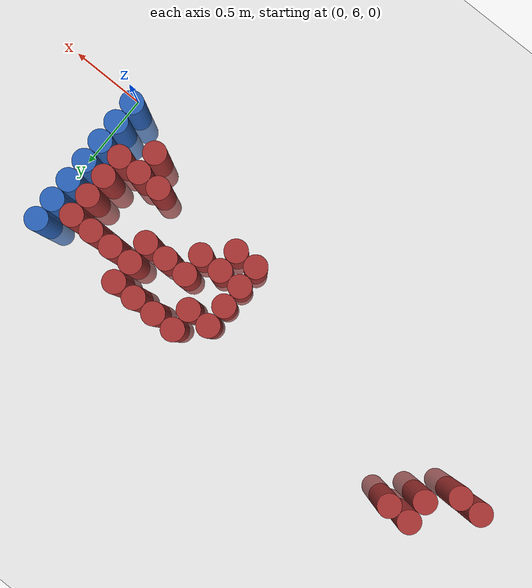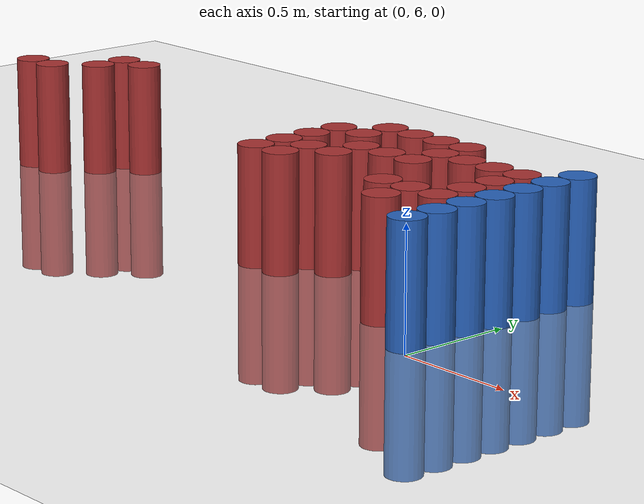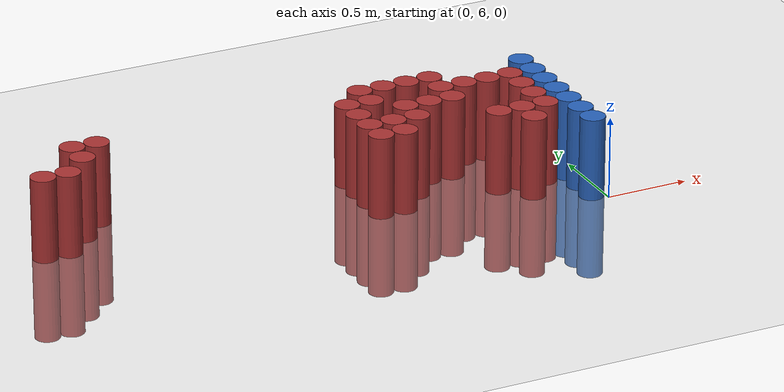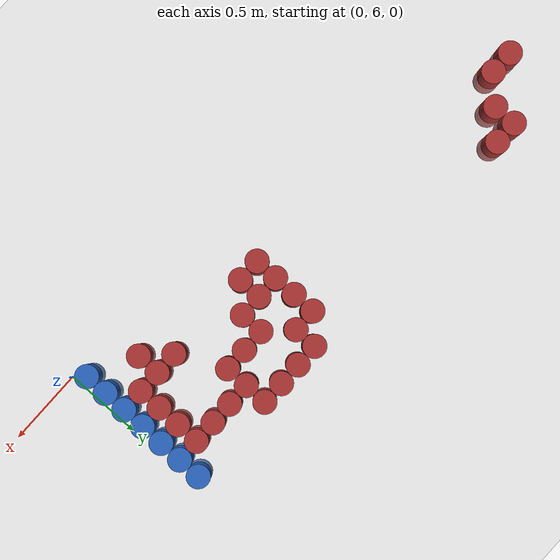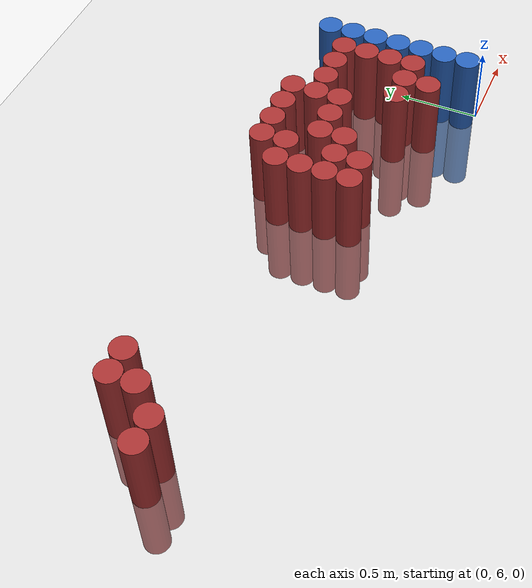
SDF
<sdf version="1.6">
 <world name="default">
  <model name="ground_plane">
   <static>1</static>
   <link name="link">
    <collision name="collision">
     <geometry><plane><normal>0 0 1</normal><size>100 100</size></plane></geometry>
     <surface><friction><ode><mu>100</mu><mu2>50</mu2></ode></friction></surface>
    </collision>
    <visual name="visual">
     <cast_shadows>0</cast_shadows>
     <geometry><plane><normal>0 0 1</normal><size>100 100</size></plane></geometry>
     <material>
      <script><uri>file://media/materials/scripts/gazebo.material</uri><name>Gazebo/Grey</name></script>
     </material>
    </visual>
   </link>
  </model>
  <model name="unit_cylinder_191">
   <static>1</static>
   <pose>-3.225000 6.675000 0.000000 0.000000 0.000000 0.000000</pose>
   <link name="link">
    <inertial>
     <mass>1</mass>
     <inertia><ixx>0.145833</ixx><ixy>0</ixy><ixz>0</ixz><iyy>0.145833</iyy><iyz>0</iyz><izz>0.125</izz></inertia>
    </inertial>
    <collision name="collision">
     <geometry><cylinder><radius>0.075000</radius><length>1</length></cylinder></geometry>
    </collision>
    <visual name="visual">
     <geometry><cylinder><radius>0.075000</radius><length>1</length></cylinder></geometry>
     <material>
      <ambient>0.648000 0.192000 0.192000 1</ambient>
      <diffuse>0.648000 0.192000 0.192000 1</diffuse>
     </material>
     <material>
      <script><name>Gazebo/Grey</name><uri>file://media/materials/scripts/gazebo.material</uri></script>
     </material>
    </visual>
    <sensor name="sensor_contact" type="contact"><contact><collision>collision</collision></contact></sensor>
   </link>
   <plugin filename="gz-sim-touchplugin-system" name="gz::sim::systems::TouchPlugin">
    <target>robot</target>
    <namespace>robot</namespace>
    <time>0.001</time>
    <enabled>true</enabled>
   </plugin>
  </model>
  <model name="unit_cylinder_200">
   <static>1</static>
   <pose>-3.075000 6.675000 0.000000 0.000000 0.000000 0.000000</pose>
   <link name="link">
    <inertial>
     <mass>1</mass>
     <inertia><ixx>0.145833</ixx><ixy>0</ixy><ixz>0</ixz><iyy>0.145833</iyy><iyz>0</iyz><izz>0.125</izz></inertia>
    </inertial>
    <collision name="collision">
     <geometry><cylinder><radius>0.075000</radius><length>1</length></cylinder></geometry>
    </collision>
    <visual name="visual">
     <geometry><cylinder><radius>0.075000</radius><length>1</length></cylinder></geometry>
     <material>
      <ambient>0.648000 0.192000 0.192000 1</ambient>
      <diffuse>0.648000 0.192000 0.192000 1</diffuse>
     </material>
     <material>
      <script><name>Gazebo/Grey</name><uri>file://media/materials/scripts/gazebo.material</uri></script>
     </material>
    </visual>
    <sensor name="sensor_contact" type="contact"><contact><collision>collision</collision></contact></sensor>
   </link>
   <plugin filename="gz-sim-touchplugin-system" name="gz::sim::systems::TouchPlugin">
    <target>robot</target>
    <namespace>robot</namespace>
    <time>0.001</time>
    <enabled>true</enabled>
   </plugin>
  </model>
  <model name="unit_cylinder_203">
   <static>1</static>
   <pose>-2.925000 6.825000 0.000000 0.000000 0.000000 0.000000</pose>
   <link name="link">
    <inertial>
     <mass>1</mass>
     <inertia><ixx>0.145833</ixx><ixy>0</ixy><ixz>0</ixz><iyy>0.145833</iyy><iyz>0</iyz><izz>0.125</izz></inertia>
    </inertial>
    <collision name="collision">
     <geometry><cylinder><radius>0.075000</radius><length>1</length></cylinder></geometry>
    </collision>
    <visual name="visual">
     <geometry><cylinder><radius>0.075000</radius><length>1</length></cylinder></geometry>
     <material>
      <ambient>0.648000 0.192000 0.192000 1</ambient>
      <diffuse>0.648000 0.192000 0.192000 1</diffuse>
     </material>
     <material>
      <script><name>Gazebo/Grey</name><uri>file://media/materials/scripts/gazebo.material</uri></script>
     </material>
    </visual>
    <sensor name="sensor_contact" type="contact"><contact><collision>collision</collision></contact></sensor>
   </link>
   <plugin filename="gz-sim-touchplugin-system" name="gz::sim::systems::TouchPlugin">
    <target>robot</target>
    <namespace>robot</namespace>
    <time>0.001</time>
    <enabled>true</enabled>
   </plugin>
  </model>
  <model name="unit_cylinder_204">
   <static>1</static>
   <pose>-2.925000 6.975000 0.000000 0.000000 0.000000 0.000000</pose>
   <link name="link">
    <inertial>
     <mass>1</mass>
     <inertia><ixx>0.145833</ixx><ixy>0</ixy><ixz>0</ixz><iyy>0.145833</iyy><iyz>0</iyz><izz>0.125</izz></inertia>
    </inertial>
    <collision name="collision">
     <geometry><cylinder><radius>0.075000</radius><length>1</length></cylinder></geometry>
    </collision>
    <visual name="visual">
     <geometry><cylinder><radius>0.075000</radius><length>1</length></cylinder></geometry>
     <material>
      <ambient>0.648000 0.192000 0.192000 1</ambient>
      <diffuse>0.648000 0.192000 0.192000 1</diffuse>
     </material>
     <material>
      <script><name>Gazebo/Grey</name><uri>file://media/materials/scripts/gazebo.material</uri></script>
     </material>
    </visual>
    <sensor name="sensor_contact" type="contact"><contact><collision>collision</collision></contact></sensor>
   </link>
   <plugin filename="gz-sim-touchplugin-system" name="gz::sim::systems::TouchPlugin">
    <target>robot</target>
    <namespace>robot</namespace>
    <time>0.001</time>
    <enabled>true</enabled>
   </plugin>
  </model>
  <model name="unit_cylinder_207">
   <static>1</static>
   <pose>-2.775000 6.975000 0.000000 0.000000 0.000000 0.000000</pose>
   <link name="link">
    <inertial>
     <mass>1</mass>
     <inertia><ixx>0.145833</ixx><ixy>0</ixy><ixz>0</ixz><iyy>0.145833</iyy><iyz>0</iyz><izz>0.125</izz></inertia>
    </inertial>
    <collision name="collision">
     <geometry><cylinder><radius>0.075000</radius><length>1</length></cylinder></geometry>
    </collision>
    <visual name="visual">
     <geometry><cylinder><radius>0.075000</radius><length>1</length></cylinder></geometry>
     <material>
      <ambient>0.648000 0.192000 0.192000 1</ambient>
      <diffuse>0.648000 0.192000 0.192000 1</diffuse>
     </material>
     <material>
      <script><name>Gazebo/Grey</name><uri>file://media/materials/scripts/gazebo.material</uri></script>
     </material>
    </visual>
    <sensor name="sensor_contact" type="contact"><contact><collision>collision</collision></contact></sensor>
   </link>
   <plugin filename="gz-sim-touchplugin-system" name="gz::sim::systems::TouchPlugin">
    <target>robot</target>
    <namespace>robot</namespace>
    <time>0.001</time>
    <enabled>true</enabled>
   </plugin>
  </model>
  <model name="unit_cylinder_231">
   <static>1</static>
   <pose>-1.275000 6.375000 0.000000 0.000000 0.000000 0.000000</pose>
   <link name="link">
    <inertial>
     <mass>1</mass>
     <inertia><ixx>0.145833</ixx><ixy>0</ixy><ixz>0</ixz><iyy>0.145833</iyy><iyz>0</iyz><izz>0.125</izz></inertia>
    </inertial>
    <collision name="collision">
     <geometry><cylinder><radius>0.075000</radius><length>1</length></cylinder></geometry>
    </collision>
    <visual name="visual">
     <geometry><cylinder><radius>0.075000</radius><length>1</length></cylinder></geometry>
     <material>
      <ambient>0.648000 0.192000 0.192000 1</ambient>
      <diffuse>0.648000 0.192000 0.192000 1</diffuse>
     </material>
     <material>
      <script><name>Gazebo/Grey</name><uri>file://media/materials/scripts/gazebo.material</uri></script>
     </material>
    </visual>
    <sensor name="sensor_contact" type="contact"><contact><collision>collision</collision></contact></sensor>
   </link>
   <plugin filename="gz-sim-touchplugin-system" name="gz::sim::systems::TouchPlugin">
    <target>robot</target>
    <namespace>robot</namespace>
    <time>0.001</time>
    <enabled>true</enabled>
   </plugin>
  </model>
  <model name="unit_cylinder_232">
   <static>1</static>
   <pose>-1.275000 6.525000 0.000000 0.000000 0.000000 0.000000</pose>
   <link name="link">
    <inertial>
     <mass>1</mass>
     <inertia><ixx>0.145833</ixx><ixy>0</ixy><ixz>0</ixz><iyy>0.145833</iyy><iyz>0</iyz><izz>0.125</izz></inertia>
    </inertial>
    <collision name="collision">
     <geometry><cylinder><radius>0.075000</radius><length>1</length></cylinder></geometry>
    </collision>
    <visual name="visual">
     <geometry><cylinder><radius>0.075000</radius><length>1</length></cylinder></geometry>
     <material>
      <ambient>0.648000 0.192000 0.192000 1</ambient>
      <diffuse>0.648000 0.192000 0.192000 1</diffuse>
     </material>
     <material>
      <script><name>Gazebo/Grey</name><uri>file://media/materials/scripts/gazebo.material</uri></script>
     </material>
    </visual>
    <sensor name="sensor_contact" type="contact"><contact><collision>collision</collision></contact></sensor>
   </link>
   <plugin filename="gz-sim-touchplugin-system" name="gz::sim::systems::TouchPlugin">
    <target>robot</target>
    <namespace>robot</namespace>
    <time>0.001</time>
    <enabled>true</enabled>
   </plugin>
  </model>
  <model name="unit_cylinder_233">
   <static>1</static>
   <pose>-1.275000 6.675000 0.000000 0.000000 0.000000 0.000000</pose>
   <link name="link">
    <inertial>
     <mass>1</mass>
     <inertia><ixx>0.145833</ixx><ixy>0</ixy><ixz>0</ixz><iyy>0.145833</iyy><iyz>0</iyz><izz>0.125</izz></inertia>
    </inertial>
    <collision name="collision">
     <geometry><cylinder><radius>0.075000</radius><length>1</length></cylinder></geometry>
    </collision>
    <visual name="visual">
     <geometry><cylinder><radius>0.075000</radius><length>1</length></cylinder></geometry>
     <material>
      <ambient>0.648000 0.192000 0.192000 1</ambient>
      <diffuse>0.648000 0.192000 0.192000 1</diffuse>
     </material>
     <material>
      <script><name>Gazebo/Grey</name><uri>file://media/materials/scripts/gazebo.material</uri></script>
     </material>
    </visual>
    <sensor name="sensor_contact" type="contact"><contact><collision>collision</collision></contact></sensor>
   </link>
   <plugin filename="gz-sim-touchplugin-system" name="gz::sim::systems::TouchPlugin">
    <target>robot</target>
    <namespace>robot</namespace>
    <time>0.001</time>
    <enabled>true</enabled>
   </plugin>
  </model>
  <model name="unit_cylinder_234">
   <static>1</static>
   <pose>-1.275000 6.825000 0.000000 0.000000 0.000000 0.000000</pose>
   <link name="link">
    <inertial>
     <mass>1</mass>
     <inertia><ixx>0.145833</ixx><ixy>0</ixy><ixz>0</ixz><iyy>0.145833</iyy><iyz>0</iyz><izz>0.125</izz></inertia>
    </inertial>
    <collision name="collision">
     <geometry><cylinder><radius>0.075000</radius><length>1</length></cylinder></geometry>
    </collision>
    <visual name="visual">
     <geometry><cylinder><radius>0.075000</radius><length>1</length></cylinder></geometry>
     <material>
      <ambient>0.648000 0.192000 0.192000 1</ambient>
      <diffuse>0.648000 0.192000 0.192000 1</diffuse>
     </material>
     <material>
      <script><name>Gazebo/Grey</name><uri>file://media/materials/scripts/gazebo.material</uri></script>
     </material>
    </visual>
    <sensor name="sensor_contact" type="contact"><contact><collision>collision</collision></contact></sensor>
   </link>
   <plugin filename="gz-sim-touchplugin-system" name="gz::sim::systems::TouchPlugin">
    <target>robot</target>
    <namespace>robot</namespace>
    <time>0.001</time>
    <enabled>true</enabled>
   </plugin>
  </model>
  <model name="unit_cylinder_237">
   <static>1</static>
   <pose>-1.125000 6.375000 0.000000 0.000000 0.000000 0.000000</pose>
   <link name="link">
    <inertial>
     <mass>1</mass>
     <inertia><ixx>0.145833</ixx><ixy>0</ixy><ixz>0</ixz><iyy>0.145833</iyy><iyz>0</iyz><izz>0.125</izz></inertia>
    </inertial>
    <collision name="collision">
     <geometry><cylinder><radius>0.075000</radius><length>1</length></cylinder></geometry>
    </collision>
    <visual name="visual">
     <geometry><cylinder><radius>0.075000</radius><length>1</length></cylinder></geometry>
     <material>
      <ambient>0.648000 0.192000 0.192000 1</ambient>
      <diffuse>0.648000 0.192000 0.192000 1</diffuse>
     </material>
     <material>
      <script><name>Gazebo/Grey</name><uri>file://media/materials/scripts/gazebo.material</uri></script>
     </material>
    </visual>
    <sensor name="sensor_contact" type="contact"><contact><collision>collision</collision></contact></sensor>
   </link>
   <plugin filename="gz-sim-touchplugin-system" name="gz::sim::systems::TouchPlugin">
    <target>robot</target>
    <namespace>robot</namespace>
    <time>0.001</time>
    <enabled>true</enabled>
   </plugin>
  </model>
  <model name="unit_cylinder_238">
   <static>1</static>
   <pose>-1.125000 6.525000 0.000000 0.000000 0.000000 0.000000</pose>
   <link name="link">
    <inertial>
     <mass>1</mass>
     <inertia><ixx>0.145833</ixx><ixy>0</ixy><ixz>0</ixz><iyy>0.145833</iyy><iyz>0</iyz><izz>0.125</izz></inertia>
    </inertial>
    <collision name="collision">
     <geometry><cylinder><radius>0.075000</radius><length>1</length></cylinder></geometry>
    </collision>
    <visual name="visual">
     <geometry><cylinder><radius>0.075000</radius><length>1</length></cylinder></geometry>
     <material>
      <ambient>0.648000 0.192000 0.192000 1</ambient>
      <diffuse>0.648000 0.192000 0.192000 1</diffuse>
     </material>
     <material>
      <script><name>Gazebo/Grey</name><uri>file://media/materials/scripts/gazebo.material</uri></script>
     </material>
    </visual>
    <sensor name="sensor_contact" type="contact"><contact><collision>collision</collision></contact></sensor>
   </link>
   <plugin filename="gz-sim-touchplugin-system" name="gz::sim::systems::TouchPlugin">
    <target>robot</target>
    <namespace>robot</namespace>
    <time>0.001</time>
    <enabled>true</enabled>
   </plugin>
  </model>
  <model name="unit_cylinder_239">
   <static>1</static>
   <pose>-1.125000 6.825000 0.000000 0.000000 0.000000 0.000000</pose>
   <link name="link">
    <inertial>
     <mass>1</mass>
     <inertia><ixx>0.145833</ixx><ixy>0</ixy><ixz>0</ixz><iyy>0.145833</iyy><iyz>0</iyz><izz>0.125</izz></inertia>
    </inertial>
    <collision name="collision">
     <geometry><cylinder><radius>0.075000</radius><length>1</length></cylinder></geometry>
    </collision>
    <visual name="visual">
     <geometry><cylinder><radius>0.075000</radius><length>1</length></cylinder></geometry>
     <material>
      <ambient>0.648000 0.192000 0.192000 1</ambient>
      <diffuse>0.648000 0.192000 0.192000 1</diffuse>
     </material>
     <material>
      <script><name>Gazebo/Grey</name><uri>file://media/materials/scripts/gazebo.material</uri></script>
     </material>
    </visual>
    <sensor name="sensor_contact" type="contact"><contact><collision>collision</collision></contact></sensor>
   </link>
   <plugin filename="gz-sim-touchplugin-system" name="gz::sim::systems::TouchPlugin">
    <target>robot</target>
    <namespace>robot</namespace>
    <time>0.001</time>
    <enabled>true</enabled>
   </plugin>
  </model>
  <model name="unit_cylinder_240">
   <static>1</static>
   <pose>-1.125000 6.975000 0.000000 0.000000 0.000000 0.000000</pose>
   <link name="link">
    <inertial>
     <mass>1</mass>
     <inertia><ixx>0.145833</ixx><ixy>0</ixy><ixz>0</ixz><iyy>0.145833</iyy><iyz>0</iyz><izz>0.125</izz></inertia>
    </inertial>
    <collision name="collision">
     <geometry><cylinder><radius>0.075000</radius><length>1</length></cylinder></geometry>
    </collision>
    <visual name="visual">
     <geometry><cylinder><radius>0.075000</radius><length>1</length></cylinder></geometry>
     <material>
      <ambient>0.648000 0.192000 0.192000 1</ambient>
      <diffuse>0.648000 0.192000 0.192000 1</diffuse>
     </material>
     <material>
      <script><name>Gazebo/Grey</name><uri>file://media/materials/scripts/gazebo.material</uri></script>
     </material>
    </visual>
    <sensor name="sensor_contact" type="contact"><contact><collision>collision</collision></contact></sensor>
   </link>
   <plugin filename="gz-sim-touchplugin-system" name="gz::sim::systems::TouchPlugin">
    <target>robot</target>
    <namespace>robot</namespace>
    <time>0.001</time>
    <enabled>true</enabled>
   </plugin>
  </model>
  <model name="unit_cylinder_245">
   <static>1</static>
   <pose>-0.975000 6.525000 0.000000 0.000000 0.000000 0.000000</pose>
   <link name="link">
    <inertial>
     <mass>1</mass>
     <inertia><ixx>0.145833</ixx><ixy>0</ixy><ixz>0</ixz><iyy>0.145833</iyy><iyz>0</iyz><izz>0.125</izz></inertia>
    </inertial>
    <collision name="collision">
     <geometry><cylinder><radius>0.075000</radius><length>1</length></cylinder></geometry>
    </collision>
    <visual name="visual">
     <geometry><cylinder><radius>0.075000</radius><length>1</length></cylinder></geometry>
     <material>
      <ambient>0.648000 0.192000 0.192000 1</ambient>
      <diffuse>0.648000 0.192000 0.192000 1</diffuse>
     </material>
     <material>
      <script><name>Gazebo/Grey</name><uri>file://media/materials/scripts/gazebo.material</uri></script>
     </material>
    </visual>
    <sensor name="sensor_contact" type="contact"><contact><collision>collision</collision></contact></sensor>
   </link>
   <plugin filename="gz-sim-touchplugin-system" name="gz::sim::systems::TouchPlugin">
    <target>robot</target>
    <namespace>robot</namespace>
    <time>0.001</time>
    <enabled>true</enabled>
   </plugin>
  </model>
  <model name="unit_cylinder_246">
   <static>1</static>
   <pose>-0.975000 6.675000 0.000000 0.000000 0.000000 0.000000</pose>
   <link name="link">
    <inertial>
     <mass>1</mass>
     <inertia><ixx>0.145833</ixx><ixy>0</ixy><ixz>0</ixz><iyy>0.145833</iyy><iyz>0</iyz><izz>0.125</izz></inertia>
    </inertial>
    <collision name="collision">
     <geometry><cylinder><radius>0.075000</radius><length>1</length></cylinder></geometry>
    </collision>
    <visual name="visual">
     <geometry><cylinder><radius>0.075000</radius><length>1</length></cylinder></geometry>
     <material>
      <ambient>0.648000 0.192000 0.192000 1</ambient>
      <diffuse>0.648000 0.192000 0.192000 1</diffuse>
     </material>
     <material>
      <script><name>Gazebo/Grey</name><uri>file://media/materials/scripts/gazebo.material</uri></script>
     </material>
    </visual>
    <sensor name="sensor_contact" type="contact"><contact><collision>collision</collision></contact></sensor>
   </link>
   <plugin filename="gz-sim-touchplugin-system" name="gz::sim::systems::TouchPlugin">
    <target>robot</target>
    <namespace>robot</namespace>
    <time>0.001</time>
    <enabled>true</enabled>
   </plugin>
  </model>
  <model name="unit_cylinder_247">
   <static>1</static>
   <pose>-0.975000 6.975000 0.000000 0.000000 0.000000 0.000000</pose>
   <link name="link">
    <inertial>
     <mass>1</mass>
     <inertia><ixx>0.145833</ixx><ixy>0</ixy><ixz>0</ixz><iyy>0.145833</iyy><iyz>0</iyz><izz>0.125</izz></inertia>
    </inertial>
    <collision name="collision">
     <geometry><cylinder><radius>0.075000</radius><length>1</length></cylinder></geometry>
    </collision>
    <visual name="visual">
     <geometry><cylinder><radius>0.075000</radius><length>1</length></cylinder></geometry>
     <material>
      <ambient>0.648000 0.192000 0.192000 1</ambient>
      <diffuse>0.648000 0.192000 0.192000 1</diffuse>
     </material>
     <material>
      <script><name>Gazebo/Grey</name><uri>file://media/materials/scripts/gazebo.material</uri></script>
     </material>
    </visual>
    <sensor name="sensor_contact" type="contact"><contact><collision>collision</collision></contact></sensor>
   </link>
   <plugin filename="gz-sim-touchplugin-system" name="gz::sim::systems::TouchPlugin">
    <target>robot</target>
    <namespace>robot</namespace>
    <time>0.001</time>
    <enabled>true</enabled>
   </plugin>
  </model>
  <model name="unit_cylinder_251">
   <static>1</static>
   <pose>-0.825000 6.675000 0.000000 0.000000 0.000000 0.000000</pose>
   <link name="link">
    <inertial>
     <mass>1</mass>
     <inertia><ixx>0.145833</ixx><ixy>0</ixy><ixz>0</ixz><iyy>0.145833</iyy><iyz>0</iyz><izz>0.125</izz></inertia>
    </inertial>
    <collision name="collision">
     <geometry><cylinder><radius>0.075000</radius><length>1</length></cylinder></geometry>
    </collision>
    <visual name="visual">
     <geometry><cylinder><radius>0.075000</radius><length>1</length></cylinder></geometry>
     <material>
      <ambient>0.648000 0.192000 0.192000 1</ambient>
      <diffuse>0.648000 0.192000 0.192000 1</diffuse>
     </material>
     <material>
      <script><name>Gazebo/Grey</name><uri>file://media/materials/scripts/gazebo.material</uri></script>
     </material>
    </visual>
    <sensor name="sensor_contact" type="contact"><contact><collision>collision</collision></contact></sensor>
   </link>
   <plugin filename="gz-sim-touchplugin-system" name="gz::sim::systems::TouchPlugin">
    <target>robot</target>
    <namespace>robot</namespace>
    <time>0.001</time>
    <enabled>true</enabled>
   </plugin>
  </model>
  <model name="unit_cylinder_252">
   <static>1</static>
   <pose>-0.825000 6.975000 0.000000 0.000000 0.000000 0.000000</pose>
   <link name="link">
    <inertial>
     <mass>1</mass>
     <inertia><ixx>0.145833</ixx><ixy>0</ixy><ixz>0</ixz><iyy>0.145833</iyy><iyz>0</iyz><izz>0.125</izz></inertia>
    </inertial>
    <collision name="collision">
     <geometry><cylinder><radius>0.075000</radius><length>1</length></cylinder></geometry>
    </collision>
    <visual name="visual">
     <geometry><cylinder><radius>0.075000</radius><length>1</length></cylinder></geometry>
     <material>
      <ambient>0.648000 0.192000 0.192000 1</ambient>
      <diffuse>0.648000 0.192000 0.192000 1</diffuse>
     </material>
     <material>
      <script><name>Gazebo/Grey</name><uri>file://media/materials/scripts/gazebo.material</uri></script>
     </material>
    </visual>
    <sensor name="sensor_contact" type="contact"><contact><collision>collision</collision></contact></sensor>
   </link>
   <plugin filename="gz-sim-touchplugin-system" name="gz::sim::systems::TouchPlugin">
    <target>robot</target>
    <namespace>robot</namespace>
    <time>0.001</time>
    <enabled>true</enabled>
   </plugin>
  </model>
  <model name="unit_cylinder_255">
   <static>1</static>
   <pose>-0.675000 6.675000 0.000000 0.000000 0.000000 0.000000</pose>
   <link name="link">
    <inertial>
     <mass>1</mass>
     <inertia><ixx>0.145833</ixx><ixy>0</ixy><ixz>0</ixz><iyy>0.145833</iyy><iyz>0</iyz><izz>0.125</izz></inertia>
    </inertial>
    <collision name="collision">
     <geometry><cylinder><radius>0.075000</radius><length>1</length></cylinder></geometry>
    </collision>
    <visual name="visual">
     <geometry><cylinder><radius>0.075000</radius><length>1</length></cylinder></geometry>
     <material>
      <ambient>0.648000 0.192000 0.192000 1</ambient>
      <diffuse>0.648000 0.192000 0.192000 1</diffuse>
     </material>
     <material>
      <script><name>Gazebo/Grey</name><uri>file://media/materials/scripts/gazebo.material</uri></script>
     </material>
    </visual>
    <sensor name="sensor_contact" type="contact"><contact><collision>collision</collision></contact></sensor>
   </link>
   <plugin filename="gz-sim-touchplugin-system" name="gz::sim::systems::TouchPlugin">
    <target>robot</target>
    <namespace>robot</namespace>
    <time>0.001</time>
    <enabled>true</enabled>
   </plugin>
  </model>
  <model name="unit_cylinder_256">
   <static>1</static>
   <pose>-0.675000 6.825000 0.000000 0.000000 0.000000 0.000000</pose>
   <link name="link">
    <inertial>
     <mass>1</mass>
     <inertia><ixx>0.145833</ixx><ixy>0</ixy><ixz>0</ixz><iyy>0.145833</iyy><iyz>0</iyz><izz>0.125</izz></inertia>
    </inertial>
    <collision name="collision">
     <geometry><cylinder><radius>0.075000</radius><length>1</length></cylinder></geometry>
    </collision>
    <visual name="visual">
     <geometry><cylinder><radius>0.075000</radius><length>1</length></cylinder></geometry>
     <material>
      <ambient>0.648000 0.192000 0.192000 1</ambient>
      <diffuse>0.648000 0.192000 0.192000 1</diffuse>
     </material>
     <material>
      <script><name>Gazebo/Grey</name><uri>file://media/materials/scripts/gazebo.material</uri></script>
     </material>
    </visual>
    <sensor name="sensor_contact" type="contact"><contact><collision>collision</collision></contact></sensor>
   </link>
   <plugin filename="gz-sim-touchplugin-system" name="gz::sim::systems::TouchPlugin">
    <target>robot</target>
    <namespace>robot</namespace>
    <time>0.001</time>
    <enabled>true</enabled>
   </plugin>
  </model>
  <model name="unit_cylinder_257">
   <static>1</static>
   <pose>-0.675000 6.975000 0.000000 0.000000 0.000000 0.000000</pose>
   <link name="link">
    <inertial>
     <mass>1</mass>
     <inertia><ixx>0.145833</ixx><ixy>0</ixy><ixz>0</ixz><iyy>0.145833</iyy><iyz>0</iyz><izz>0.125</izz></inertia>
    </inertial>
    <collision name="collision">
     <geometry><cylinder><radius>0.075000</radius><length>1</length></cylinder></geometry>
    </collision>
    <visual name="visual">
     <geometry><cylinder><radius>0.075000</radius><length>1</length></cylinder></geometry>
     <material>
      <ambient>0.648000 0.192000 0.192000 1</ambient>
      <diffuse>0.648000 0.192000 0.192000 1</diffuse>
     </material>
     <material>
      <script><name>Gazebo/Grey</name><uri>file://media/materials/scripts/gazebo.material</uri></script>
     </material>
    </visual>
    <sensor name="sensor_contact" type="contact"><contact><collision>collision</collision></contact></sensor>
   </link>
   <plugin filename="gz-sim-touchplugin-system" name="gz::sim::systems::TouchPlugin">
    <target>robot</target>
    <namespace>robot</namespace>
    <time>0.001</time>
    <enabled>true</enabled>
   </plugin>
  </model>
  <model name="unit_cylinder_265">
   <static>1</static>
   <pose>-0.525000 6.375000 0.000000 0.000000 0.000000 0.000000</pose>
   <link name="link">
    <inertial>
     <mass>1</mass>
     <inertia><ixx>0.145833</ixx><ixy>0</ixy><ixz>0</ixz><iyy>0.145833</iyy><iyz>0</iyz><izz>0.125</izz></inertia>
    </inertial>
    <collision name="collision">
     <geometry><cylinder><radius>0.075000</radius><length>1</length></cylinder></geometry>
    </collision>
    <visual name="visual">
     <geometry><cylinder><radius>0.075000</radius><length>1</length></cylinder></geometry>
     <material>
      <ambient>0.648000 0.192000 0.192000 1</ambient>
      <diffuse>0.648000 0.192000 0.192000 1</diffuse>
     </material>
     <material>
      <script><name>Gazebo/Grey</name><uri>file://media/materials/scripts/gazebo.material</uri></script>
     </material>
    </visual>
    <sensor name="sensor_contact" type="contact"><contact><collision>collision</collision></contact></sensor>
   </link>
   <plugin filename="gz-sim-touchplugin-system" name="gz::sim::systems::TouchPlugin">
    <target>robot</target>
    <namespace>robot</namespace>
    <time>0.001</time>
    <enabled>true</enabled>
   </plugin>
  </model>
  <model name="unit_cylinder_266">
   <static>1</static>
   <pose>-0.525000 6.825000 0.000000 0.000000 0.000000 0.000000</pose>
   <link name="link">
    <inertial>
     <mass>1</mass>
     <inertia><ixx>0.145833</ixx><ixy>0</ixy><ixz>0</ixz><iyy>0.145833</iyy><iyz>0</iyz><izz>0.125</izz></inertia>
    </inertial>
    <collision name="collision">
     <geometry><cylinder><radius>0.075000</radius><length>1</length></cylinder></geometry>
    </collision>
    <visual name="visual">
     <geometry><cylinder><radius>0.075000</radius><length>1</length></cylinder></geometry>
     <material>
      <ambient>0.648000 0.192000 0.192000 1</ambient>
      <diffuse>0.648000 0.192000 0.192000 1</diffuse>
     </material>
     <material>
      <script><name>Gazebo/Grey</name><uri>file://media/materials/scripts/gazebo.material</uri></script>
     </material>
    </visual>
    <sensor name="sensor_contact" type="contact"><contact><collision>collision</collision></contact></sensor>
   </link>
   <plugin filename="gz-sim-touchplugin-system" name="gz::sim::systems::TouchPlugin">
    <target>robot</target>
    <namespace>robot</namespace>
    <time>0.001</time>
    <enabled>true</enabled>
   </plugin>
  </model>
  <model name="unit_cylinder_278">
   <static>1</static>
   <pose>-0.375000 6.225000 0.000000 0.000000 0.000000 0.000000</pose>
   <link name="link">
    <inertial>
     <mass>1</mass>
     <inertia><ixx>0.145833</ixx><ixy>0</ixy><ixz>0</ixz><iyy>0.145833</iyy><iyz>0</iyz><izz>0.125</izz></inertia>
    </inertial>
    <collision name="collision">
     <geometry><cylinder><radius>0.075000</radius><length>1</length></cylinder></geometry>
    </collision>
    <visual name="visual">
     <geometry><cylinder><radius>0.075000</radius><length>1</length></cylinder></geometry>
     <material>
      <ambient>0.648000 0.192000 0.192000 1</ambient>
      <diffuse>0.648000 0.192000 0.192000 1</diffuse>
     </material>
     <material>
      <script><name>Gazebo/Grey</name><uri>file://media/materials/scripts/gazebo.material</uri></script>
     </material>
    </visual>
    <sensor name="sensor_contact" type="contact"><contact><collision>collision</collision></contact></sensor>
   </link>
   <plugin filename="gz-sim-touchplugin-system" name="gz::sim::systems::TouchPlugin">
    <target>robot</target>
    <namespace>robot</namespace>
    <time>0.001</time>
    <enabled>true</enabled>
   </plugin>
  </model>
  <model name="unit_cylinder_279">
   <static>1</static>
   <pose>-0.375000 6.375000 0.000000 0.000000 0.000000 0.000000</pose>
   <link name="link">
    <inertial>
     <mass>1</mass>
     <inertia><ixx>0.145833</ixx><ixy>0</ixy><ixz>0</ixz><iyy>0.145833</iyy><iyz>0</iyz><izz>0.125</izz></inertia>
    </inertial>
    <collision name="collision">
     <geometry><cylinder><radius>0.075000</radius><length>1</length></cylinder></geometry>
    </collision>
    <visual name="visual">
     <geometry><cylinder><radius>0.075000</radius><length>1</length></cylinder></geometry>
     <material>
      <ambient>0.648000 0.192000 0.192000 1</ambient>
      <diffuse>0.648000 0.192000 0.192000 1</diffuse>
     </material>
     <material>
      <script><name>Gazebo/Grey</name><uri>file://media/materials/scripts/gazebo.material</uri></script>
     </material>
    </visual>
    <sensor name="sensor_contact" type="contact"><contact><collision>collision</collision></contact></sensor>
   </link>
   <plugin filename="gz-sim-touchplugin-system" name="gz::sim::systems::TouchPlugin">
    <target>robot</target>
    <namespace>robot</namespace>
    <time>0.001</time>
    <enabled>true</enabled>
   </plugin>
  </model>
  <model name="unit_cylinder_280">
   <static>1</static>
   <pose>-0.375000 6.825000 0.000000 0.000000 0.000000 0.000000</pose>
   <link name="link">
    <inertial>
     <mass>1</mass>
     <inertia><ixx>0.145833</ixx><ixy>0</ixy><ixz>0</ixz><iyy>0.145833</iyy><iyz>0</iyz><izz>0.125</izz></inertia>
    </inertial>
    <collision name="collision">
     <geometry><cylinder><radius>0.075000</radius><length>1</length></cylinder></geometry>
    </collision>
    <visual name="visual">
     <geometry><cylinder><radius>0.075000</radius><length>1</length></cylinder></geometry>
     <material>
      <ambient>0.648000 0.192000 0.192000 1</ambient>
      <diffuse>0.648000 0.192000 0.192000 1</diffuse>
     </material>
     <material>
      <script><name>Gazebo/Grey</name><uri>file://media/materials/scripts/gazebo.material</uri></script>
     </material>
    </visual>
    <sensor name="sensor_contact" type="contact"><contact><collision>collision</collision></contact></sensor>
   </link>
   <plugin filename="gz-sim-touchplugin-system" name="gz::sim::systems::TouchPlugin">
    <target>robot</target>
    <namespace>robot</namespace>
    <time>0.001</time>
    <enabled>true</enabled>
   </plugin>
  </model>
  <model name="unit_cylinder_292">
   <static>1</static>
   <pose>-0.225000 6.375000 0.000000 0.000000 0.000000 0.000000</pose>
   <link name="link">
    <inertial>
     <mass>1</mass>
     <inertia><ixx>0.145833</ixx><ixy>0</ixy><ixz>0</ixz><iyy>0.145833</iyy><iyz>0</iyz><izz>0.125</izz></inertia>
    </inertial>
    <collision name="collision">
     <geometry><cylinder><radius>0.075000</radius><length>1</length></cylinder></geometry>
    </collision>
    <visual name="visual">
     <geometry><cylinder><radius>0.075000</radius><length>1</length></cylinder></geometry>
     <material>
      <ambient>0.648000 0.192000 0.192000 1</ambient>
      <diffuse>0.648000 0.192000 0.192000 1</diffuse>
     </material>
     <material>
      <script><name>Gazebo/Grey</name><uri>file://media/materials/scripts/gazebo.material</uri></script>
     </material>
    </visual>
    <sensor name="sensor_contact" type="contact"><contact><collision>collision</collision></contact></sensor>
   </link>
   <plugin filename="gz-sim-touchplugin-system" name="gz::sim::systems::TouchPlugin">
    <target>robot</target>
    <namespace>robot</namespace>
    <time>0.001</time>
    <enabled>true</enabled>
   </plugin>
  </model>
  <model name="unit_cylinder_293">
   <static>1</static>
   <pose>-0.225000 6.525000 0.000000 0.000000 0.000000 0.000000</pose>
   <link name="link">
    <inertial>
     <mass>1</mass>
     <inertia><ixx>0.145833</ixx><ixy>0</ixy><ixz>0</ixz><iyy>0.145833</iyy><iyz>0</iyz><izz>0.125</izz></inertia>
    </inertial>
    <collision name="collision">
     <geometry><cylinder><radius>0.075000</radius><length>1</length></cylinder></geometry>
    </collision>
    <visual name="visual">
     <geometry><cylinder><radius>0.075000</radius><length>1</length></cylinder></geometry>
     <material>
      <ambient>0.648000 0.192000 0.192000 1</ambient>
      <diffuse>0.648000 0.192000 0.192000 1</diffuse>
     </material>
     <material>
      <script><name>Gazebo/Grey</name><uri>file://media/materials/scripts/gazebo.material</uri></script>
     </material>
    </visual>
    <sensor name="sensor_contact" type="contact"><contact><collision>collision</collision></contact></sensor>
   </link>
   <plugin filename="gz-sim-touchplugin-system" name="gz::sim::systems::TouchPlugin">
    <target>robot</target>
    <namespace>robot</namespace>
    <time>0.001</time>
    <enabled>true</enabled>
   </plugin>
  </model>
  <model name="unit_cylinder_294">
   <static>1</static>
   <pose>-0.225000 6.675000 0.000000 0.000000 0.000000 0.000000</pose>
   <link name="link">
    <inertial>
     <mass>1</mass>
     <inertia><ixx>0.145833</ixx><ixy>0</ixy><ixz>0</ixz><iyy>0.145833</iyy><iyz>0</iyz><izz>0.125</izz></inertia>
    </inertial>
    <collision name="collision">
     <geometry><cylinder><radius>0.075000</radius><length>1</length></cylinder></geometry>
    </collision>
    <visual name="visual">
     <geometry><cylinder><radius>0.075000</radius><length>1</length></cylinder></geometry>
     <material>
      <ambient>0.648000 0.192000 0.192000 1</ambient>
      <diffuse>0.648000 0.192000 0.192000 1</diffuse>
     </material>
     <material>
      <script><name>Gazebo/Grey</name><uri>file://media/materials/scripts/gazebo.material</uri></script>
     </material>
    </visual>
    <sensor name="sensor_contact" type="contact"><contact><collision>collision</collision></contact></sensor>
   </link>
   <plugin filename="gz-sim-touchplugin-system" name="gz::sim::systems::TouchPlugin">
    <target>robot</target>
    <namespace>robot</namespace>
    <time>0.001</time>
    <enabled>true</enabled>
   </plugin>
  </model>
  <model name="unit_cylinder_295">
   <static>1</static>
   <pose>-0.225000 6.825000 0.000000 0.000000 0.000000 0.000000</pose>
   <link name="link">
    <inertial>
     <mass>1</mass>
     <inertia><ixx>0.145833</ixx><ixy>0</ixy><ixz>0</ixz><iyy>0.145833</iyy><iyz>0</iyz><izz>0.125</izz></inertia>
    </inertial>
    <collision name="collision">
     <geometry><cylinder><radius>0.075000</radius><length>1</length></cylinder></geometry>
    </collision>
    <visual name="visual">
     <geometry><cylinder><radius>0.075000</radius><length>1</length></cylinder></geometry>
     <material>
      <ambient>0.648000 0.192000 0.192000 1</ambient>
      <diffuse>0.648000 0.192000 0.192000 1</diffuse>
     </material>
     <material>
      <script><name>Gazebo/Grey</name><uri>file://media/materials/scripts/gazebo.material</uri></script>
     </material>
    </visual>
    <sensor name="sensor_contact" type="contact"><contact><collision>collision</collision></contact></sensor>
   </link>
   <plugin filename="gz-sim-touchplugin-system" name="gz::sim::systems::TouchPlugin">
    <target>robot</target>
    <namespace>robot</namespace>
    <time>0.001</time>
    <enabled>true</enabled>
   </plugin>
  </model>
  <model name="unit_cylinder_312">
   <static>1</static>
   <pose>-0.075000 6.075000 0.000000 0.000000 0.000000 0.000000</pose>
   <link name="link">
    <inertial>
     <mass>1</mass>
     <inertia><ixx>0.145833</ixx><ixy>0</ixy><ixz>0</ixz><iyy>0.145833</iyy><iyz>0</iyz><izz>0.125</izz></inertia>
    </inertial>
    <collision name="collision">
     <geometry><cylinder><radius>0.075000</radius><length>1</length></cylinder></geometry>
    </collision>
    <visual name="visual">
     <geometry><cylinder><radius>0.075000</radius><length>1</length></cylinder></geometry>
     <material>
      <ambient>0.152000 0.379000 0.720000 1</ambient>
      <diffuse>0.152000 0.379000 0.720000 1</diffuse>
     </material>
     <material>
      <script><name>Gazebo/Grey</name><uri>file://media/materials/scripts/gazebo.material</uri></script>
     </material>
    </visual>
    <sensor name="sensor_contact" type="contact"><contact><collision>collision</collision></contact></sensor>
   </link>
   <plugin filename="gz-sim-touchplugin-system" name="gz::sim::systems::TouchPlugin">
    <target>robot</target>
    <namespace>robot</namespace>
    <time>0.001</time>
    <enabled>true</enabled>
   </plugin>
  </model>
  <model name="unit_cylinder_313">
   <static>1</static>
   <pose>-0.075000 6.225000 0.000000 0.000000 0.000000 0.000000</pose>
   <link name="link">
    <inertial>
     <mass>1</mass>
     <inertia><ixx>0.145833</ixx><ixy>0</ixy><ixz>0</ixz><iyy>0.145833</iyy><iyz>0</iyz><izz>0.125</izz></inertia>
    </inertial>
    <collision name="collision">
     <geometry><cylinder><radius>0.075000</radius><length>1</length></cylinder></geometry>
    </collision>
    <visual name="visual">
     <geometry><cylinder><radius>0.075000</radius><length>1</length></cylinder></geometry>
     <material>
      <ambient>0.152000 0.379000 0.720000 1</ambient>
      <diffuse>0.152000 0.379000 0.720000 1</diffuse>
     </material>
     <material>
      <script><name>Gazebo/Grey</name><uri>file://media/materials/scripts/gazebo.material</uri></script>
     </material>
    </visual>
    <sensor name="sensor_contact" type="contact"><contact><collision>collision</collision></contact></sensor>
   </link>
   <plugin filename="gz-sim-touchplugin-system" name="gz::sim::systems::TouchPlugin">
    <target>robot</target>
    <namespace>robot</namespace>
    <time>0.001</time>
    <enabled>true</enabled>
   </plugin>
  </model>
  <model name="unit_cylinder_314">
   <static>1</static>
   <pose>-0.075000 6.375000 0.000000 0.000000 0.000000 0.000000</pose>
   <link name="link">
    <inertial>
     <mass>1</mass>
     <inertia><ixx>0.145833</ixx><ixy>0</ixy><ixz>0</ixz><iyy>0.145833</iyy><iyz>0</iyz><izz>0.125</izz></inertia>
    </inertial>
    <collision name="collision">
     <geometry><cylinder><radius>0.075000</radius><length>1</length></cylinder></geometry>
    </collision>
    <visual name="visual">
     <geometry><cylinder><radius>0.075000</radius><length>1</length></cylinder></geometry>
     <material>
      <ambient>0.152000 0.379000 0.720000 1</ambient>
      <diffuse>0.152000 0.379000 0.720000 1</diffuse>
     </material>
     <material>
      <script><name>Gazebo/Grey</name><uri>file://media/materials/scripts/gazebo.material</uri></script>
     </material>
    </visual>
    <sensor name="sensor_contact" type="contact"><contact><collision>collision</collision></contact></sensor>
   </link>
   <plugin filename="gz-sim-touchplugin-system" name="gz::sim::systems::TouchPlugin">
    <target>robot</target>
    <namespace>robot</namespace>
    <time>0.001</time>
    <enabled>true</enabled>
   </plugin>
  </model>
  <model name="unit_cylinder_315">
   <static>1</static>
   <pose>-0.075000 6.525000 0.000000 0.000000 0.000000 0.000000</pose>
   <link name="link">
    <inertial>
     <mass>1</mass>
     <inertia><ixx>0.145833</ixx><ixy>0</ixy><ixz>0</ixz><iyy>0.145833</iyy><iyz>0</iyz><izz>0.125</izz></inertia>
    </inertial>
    <collision name="collision">
     <geometry><cylinder><radius>0.075000</radius><length>1</length></cylinder></geometry>
    </collision>
    <visual name="visual">
     <geometry><cylinder><radius>0.075000</radius><length>1</length></cylinder></geometry>
     <material>
      <ambient>0.152000 0.379000 0.720000 1</ambient>
      <diffuse>0.152000 0.379000 0.720000 1</diffuse>
     </material>
     <material>
      <script><name>Gazebo/Grey</name><uri>file://media/materials/scripts/gazebo.material</uri></script>
     </material>
    </visual>
    <sensor name="sensor_contact" type="contact"><contact><collision>collision</collision></contact></sensor>
   </link>
   <plugin filename="gz-sim-touchplugin-system" name="gz::sim::systems::TouchPlugin">
    <target>robot</target>
    <namespace>robot</namespace>
    <time>0.001</time>
    <enabled>true</enabled>
   </plugin>
  </model>
  <model name="unit_cylinder_316">
   <static>1</static>
   <pose>-0.075000 6.675000 0.000000 0.000000 0.000000 0.000000</pose>
   <link name="link">
    <inertial>
     <mass>1</mass>
     <inertia><ixx>0.145833</ixx><ixy>0</ixy><ixz>0</ixz><iyy>0.145833</iyy><iyz>0</iyz><izz>0.125</izz></inertia>
    </inertial>
    <collision name="collision">
     <geometry><cylinder><radius>0.075000</radius><length>1</length></cylinder></geometry>
    </collision>
    <visual name="visual">
     <geometry><cylinder><radius>0.075000</radius><length>1</length></cylinder></geometry>
     <material>
      <ambient>0.152000 0.379000 0.720000 1</ambient>
      <diffuse>0.152000 0.379000 0.720000 1</diffuse>
     </material>
     <material>
      <script><name>Gazebo/Grey</name><uri>file://media/materials/scripts/gazebo.material</uri></script>
     </material>
    </visual>
    <sensor name="sensor_contact" type="contact"><contact><collision>collision</collision></contact></sensor>
   </link>
   <plugin filename="gz-sim-touchplugin-system" name="gz::sim::systems::TouchPlugin">
    <target>robot</target>
    <namespace>robot</namespace>
    <time>0.001</time>
    <enabled>true</enabled>
   </plugin>
  </model>
  <model name="unit_cylinder_317">
   <static>1</static>
   <pose>-0.075000 6.825000 0.000000 0.000000 0.000000 0.000000</pose>
   <link name="link">
    <inertial>
     <mass>1</mass>
     <inertia><ixx>0.145833</ixx><ixy>0</ixy><ixz>0</ixz><iyy>0.145833</iyy><iyz>0</iyz><izz>0.125</izz></inertia>
    </inertial>
    <collision name="collision">
     <geometry><cylinder><radius>0.075000</radius><length>1</length></cylinder></geometry>
    </collision>
    <visual name="visual">
     <geometry><cylinder><radius>0.075000</radius><length>1</length></cylinder></geometry>
     <material>
      <ambient>0.152000 0.379000 0.720000 1</ambient>
      <diffuse>0.152000 0.379000 0.720000 1</diffuse>
     </material>
     <material>
      <script><name>Gazebo/Grey</name><uri>file://media/materials/scripts/gazebo.material</uri></script>
     </material>
    </visual>
    <sensor name="sensor_contact" type="contact"><contact><collision>collision</collision></contact></sensor>
   </link>
   <plugin filename="gz-sim-touchplugin-system" name="gz::sim::systems::TouchPlugin">
    <target>robot</target>
    <namespace>robot</namespace>
    <time>0.001</time>
    <enabled>true</enabled>
   </plugin>
  </model>
  <model name="unit_cylinder_318">
   <static>1</static>
   <pose>-0.075000 6.975000 0.000000 0.000000 0.000000 0.000000</pose>
   <link name="link">
    <inertial>
     <mass>1</mass>
     <inertia><ixx>0.145833</ixx><ixy>0</ixy><ixz>0</ixz><iyy>0.145833</iyy><iyz>0</iyz><izz>0.125</izz></inertia>
    </inertial>
    <collision name="collision">
     <geometry><cylinder><radius>0.075000</radius><length>1</length></cylinder></geometry>
    </collision>
    <visual name="visual">
     <geometry><cylinder><radius>0.075000</radius><length>1</length></cylinder></geometry>
     <material>
      <ambient>0.152000 0.379000 0.720000 1</ambient>
      <diffuse>0.152000 0.379000 0.720000 1</diffuse>
     </material>
     <material>
      <script><name>Gazebo/Grey</name><uri>file://media/materials/scripts/gazebo.material</uri></script>
     </material>
    </visual>
    <sensor name="sensor_contact" type="contact"><contact><collision>collision</collision></contact></sensor>
   </link>
   <plugin filename="gz-sim-touchplugin-system" name="gz::sim::systems::TouchPlugin">
    <target>robot</target>
    <namespace>robot</namespace>
    <time>0.001</time>
    <enabled>true</enabled>
   </plugin>
  </model>
 </world>
</sdf>
